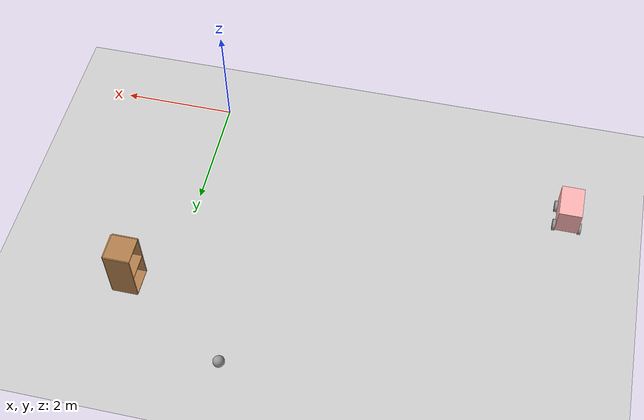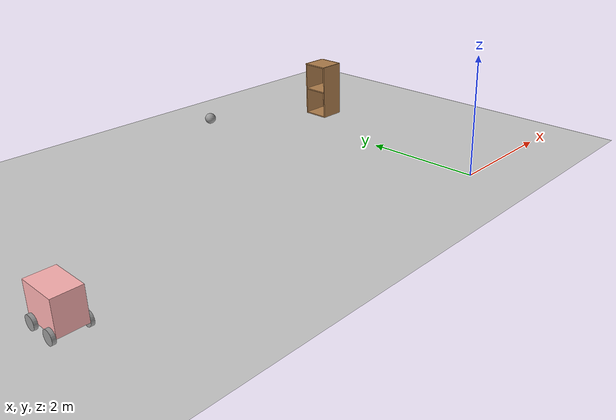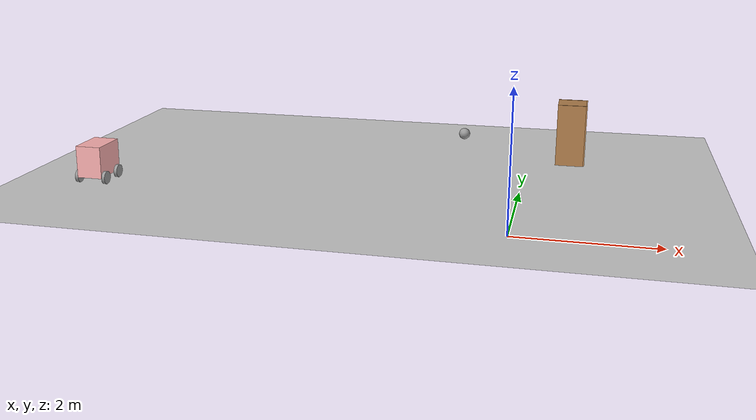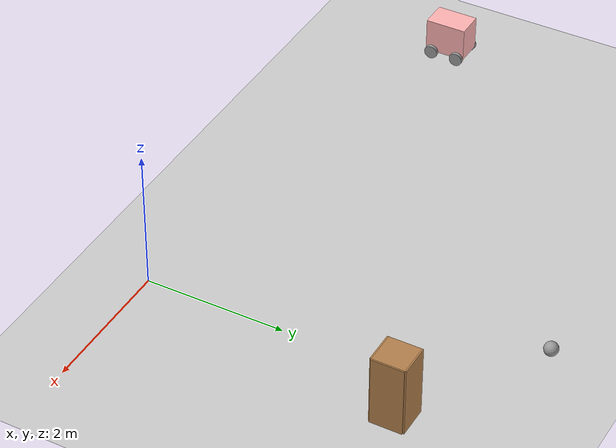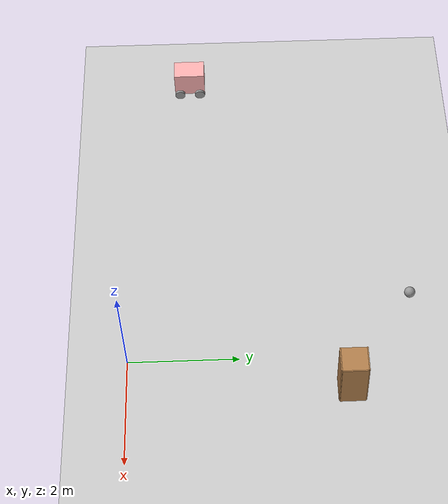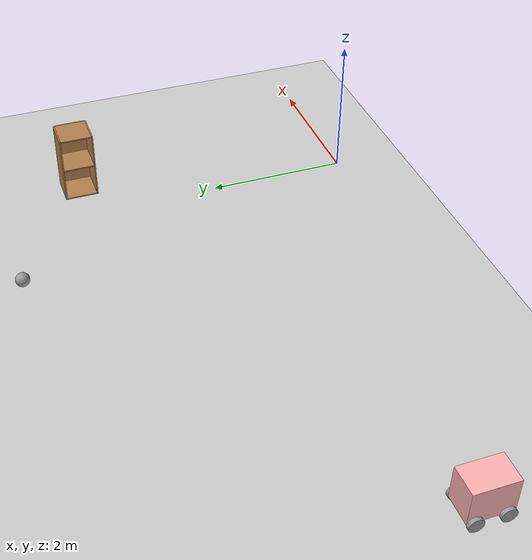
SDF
<sdf version="1.6">
 <world name="default">
  <model name="ground_plane">
   <static>1</static>
   <link name="link">
    <collision name="collision">
     <geometry><plane><normal>0 0 1</normal><size>100 100</size></plane></geometry>
     <surface>
      <contact><collide_bitmask>65535</collide_bitmask></contact>
      <friction><ode><mu>100</mu><mu2>50</mu2></ode></friction>
     </surface>
    </collision>
    <visual name="visual">
     <cast_shadows>0</cast_shadows>
     <geometry><plane><normal>0 0 1</normal><size>100 100</size></plane></geometry>
     <material>
      <script><uri>file://media/materials/scripts/gazebo.material</uri><name>Gazebo/Grey</name></script>
     </material>
    </visual>
   </link>
  </model>
  <model name="cabinet">
   <static>1</static>
   <link name="cabinet_bottom_plate">
    <inertial>
     <pose>0 0 -1 0 -0 0</pose>
     <inertia><ixx>2.05</ixx><ixy>0</ixy><ixz>0</ixz><iyy>2.05</iyy><iyz>0</iyz><izz>2.05</izz></inertia>
     <mass>25</mass>
    </inertial>
    <collision name="cabinet_bottom_plate_geom">
     <pose>0 0 0.01 0 -0 0</pose>
     <geometry><box><size>0.45 0.45 0.02</size></box></geometry>
    </collision>
    <visual name="cabinet_bottom_plate_geom_visual">
     <pose>0 0 0.01 0 -0 0</pose>
     <geometry><box><size>0.45 0.45 0.02</size></box></geometry>
     <material>
      <script><uri>file://media/materials/scripts/gazebo.material</uri><name>Gazebo/Wood</name></script>
     </material>
    </visual>
    <collision name="cabinet_bottom_plate_geom_cabinet_back_plate">
     <pose>0.235 0 0.51 0 -0 0</pose>
     <geometry><box><size>0.02 0.45 1.02</size></box></geometry>
    </collision>
    <visual name="cabinet_bottom_plate_geom_cabinet_back_plate_visual">
     <pose>0.235 0 0.51 0 -0 0</pose>
     <geometry><box><size>0.02 0.45 1.02</size></box></geometry>
     <material>
      <script><uri>file://media/materials/scripts/gazebo.material</uri><name>Gazebo/Wood</name></script>
     </material>
    </visual>
    <collision name="cabinet_bottom_plate_geom_cabinet_left_plate">
     <pose>0 0.235 0.51 0 -0 0</pose>
     <geometry><box><size>0.45 0.02 1.02</size></box></geometry>
    </collision>
    <visual name="cabinet_bottom_plate_geom_cabinet_left_plate_visual">
     <pose>0 0.235 0.51 0 -0 0</pose>
     <geometry><box><size>0.45 0.02 1.02</size></box></geometry>
     <material>
      <script><uri>file://media/materials/scripts/gazebo.material</uri><name>Gazebo/Wood</name></script>
     </material>
    </visual>
    <collision name="cabinet_bottom_plate_geom_cabinet_middle_plate">
     <pose>0 0 0.51 0 -0 0</pose>
     <geometry><box><size>0.45 0.45 0.02</size></box></geometry>
    </collision>
    <visual name="cabinet_bottom_plate_geom_cabinet_middle_plate_visual">
     <pose>0 0 0.51 0 -0 0</pose>
     <geometry><box><size>0.45 0.45 0.02</size></box></geometry>
     <material>
      <script><uri>file://media/materials/scripts/gazebo.material</uri><name>Gazebo/Wood</name></script>
     </material>
    </visual>
    <collision name="cabinet_bottom_plate_geom_cabinet_right_plate">
     <pose>0 -0.235 0.51 0 -0 0</pose>
     <geometry><box><size>0.45 0.02 1.02</size></box></geometry>
    </collision>
    <visual name="cabinet_bottom_plate_geom_cabinet_right_plate_visual">
     <pose>0 -0.235 0.51 0 -0 0</pose>
     <geometry><box><size>0.45 0.02 1.02</size></box></geometry>
     <material>
      <script><uri>file://media/materials/scripts/gazebo.material</uri><name>Gazebo/Wood</name></script>
     </material>
    </visual>
    <collision name="cabinet_bottom_plate_geom_cabinet_top_plate">
     <pose>0 0 1.01 0 -0 0</pose>
     <geometry><box><size>0.45 0.45 0.02</size></box></geometry>
    </collision>
    <visual name="cabinet_bottom_plate_geom_cabinet_top_plate_visual">
     <pose>0 0 1.01 0 -0 0</pose>
     <geometry><box><size>0.45 0.45 0.02</size></box></geometry>
     <material>
      <script><uri>file://media/materials/scripts/gazebo.material</uri><name>Gazebo/Wood</name></script>
     </material>
    </visual>
   </link>
   <pose>0.678768 3.94836 0 0 -0 0</pose>
  </model>
  <model name="my_ball">
   <link name="link_0">
    <inertial>
     <mass>1</mass>
     <inertia><ixx>0.1</ixx><ixy>0</ixy><ixz>0</ixz><iyy>0.1</iyy><iyz>0</iyz><izz>0.1</izz></inertia>
    </inertial>
    <visual name="visual">
     <geometry><sphere><radius>0.1</radius></sphere></geometry>
     <material>
      <lighting>1</lighting>
      <script><uri>file://media/materials/scripts/gazebo.material</uri><name>Gazebo/Grey</name></script>
      <shader type="vertex"><normal_map>__default__</normal_map></shader>
      <ambient>1 1 1 1</ambient>
      <diffuse>1 1 1 1</diffuse>
      <specular>1 1 1 1</specular>
      <emissive>1 1 1 1</emissive>
     </material>
    </visual>
    <collision name="collision">
     <geometry><sphere><radius>0.1</radius></sphere></geometry>
     <surface>
      <friction>
       <ode><mu>1</mu><mu2>1</mu2><fdir1>0 0 0</fdir1><slip1>0</slip1><slip2>0</slip2></ode>
       <torsional>
        <coefficient>1</coefficient>
        <patch_radius>0</patch_radius>
        <surface_radius>0</surface_radius>
        <use_patch_radius>1</use_patch_radius>
        <ode><slip>0</slip></ode>
       </torsional>
      </friction>
      <bounce><restitution_coefficient>0</restitution_coefficient><threshold>1e+06</threshold></bounce>
      <contact>
       <collide_without_contact>0</collide_without_contact>
       <collide_without_contact_bitmask>1</collide_without_contact_bitmask>
       <collide_bitmask>1</collide_bitmask>
       <ode>
        <soft_cfm>0</soft_cfm>
        <soft_erp>0.2</soft_erp>
        <kp>1e+13</kp>
        <kd>1</kd>
        <max_vel>0.01</max_vel>
        <min_depth>0</min_depth>
       </ode>
       <bullet>
        <split_impulse>1</split_impulse>
        <split_impulse_penetration_threshold>-0.01</split_impulse_penetration_threshold>
        <soft_cfm>0</soft_cfm>
        <soft_erp>0.2</soft_erp>
        <kp>1e+13</kp>
        <kd>1</kd>
       </bullet>
      </contact>
     </surface>
    </collision>
   </link>
   <static>0</static>
   <pose>-1.24508 5.14624 0.1 0 -0 0</pose>
  </model>
  <model name="Robot_1">
   <link name="link_0">
    <inertial>
     <mass>1</mass>
     <inertia>
      <ixx>0.166667</ixx>
      <ixy>0</ixy>
      <ixz>0</ixz>
      <iyy>0.166667</iyy>
      <iyz>0</iyz>
      <izz>0.166667</izz>
     </inertia>
    </inertial>
    <visual name="visual">
     <pose>0 0 0.25 0 -0 0</pose>
     <geometry><box><size>0.4 0.6 0.5</size></box></geometry>
     <material>
      <lighting>1</lighting>
      <script><uri>file://media/materials/scripts/gazebo.material</uri><name>Gazebo/Grey</name></script>
      <shader type="vertex"><normal_map>__default__</normal_map></shader>
      <ambient>1 0.3 0.3 1</ambient>
      <diffuse>1 0.7 0.7 1</diffuse>
      <specular>1 0.01 0.01 1</specular>
      <emissive>0 0 0 1</emissive>
     </material>
    </visual>
    <collision name="collision">
     <pose>0 0 0.25 0 -0 0</pose>
     <geometry><box><size>0.4 0.6 0.5</size></box></geometry>
     <surface>
      <friction>
       <ode><mu>1</mu><mu2>1</mu2><fdir1>0 0 0</fdir1><slip1>0</slip1><slip2>0</slip2></ode>
       <torsional>
        <coefficient>1</coefficient>
        <patch_radius>0</patch_radius>
        <surface_radius>0</surface_radius>
        <use_patch_radius>1</use_patch_radius>
        <ode><slip>0</slip></ode>
       </torsional>
      </friction>
      <bounce><restitution_coefficient>0</restitution_coefficient><threshold>1e+06</threshold></bounce>
      <contact>
       <collide_without_contact>0</collide_without_contact>
       <collide_without_contact_bitmask>1</collide_without_contact_bitmask>
       <collide_bitmask>1</collide_bitmask>
       <ode>
        <soft_cfm>0</soft_cfm>
        <soft_erp>0.2</soft_erp>
        <kp>1e+13</kp>
        <kd>1</kd>
        <max_vel>0.01</max_vel>
        <min_depth>0</min_depth>
       </ode>
       <bullet>
        <split_impulse>1</split_impulse>
        <split_impulse_penetration_threshold>-0.01</split_impulse_penetration_threshold>
        <soft_cfm>0</soft_cfm>
        <soft_erp>0.2</soft_erp>
        <kp>1e+13</kp>
        <kd>1</kd>
       </bullet>
      </contact>
     </surface>
    </collision>
   </link>
   <link name="link_1_clone">
    <inertial>
     <mass>1</mass>
     <inertia><ixx>0.145833</ixx><ixy>0</ixy><ixz>0</ixz><iyy>0.145833</iyy><iyz>0</iyz><izz>0.125</izz></inertia>
    </inertial>
    <pose>-0.225001 0.2 0 1.5708 -0 1.5708</pose>
    <visual name="visual">
     <geometry><cylinder><radius>0.1</radius><length>0.05</length></cylinder></geometry>
     <material>
      <lighting>1</lighting>
      <script><uri>file://media/materials/scripts/gazebo.material</uri><name>Gazebo/Grey</name></script>
      <shader type="vertex"><normal_map>__default__</normal_map></shader>
      <ambient>0.3 0.3 0.3 1</ambient>
      <diffuse>0.7 0.7 0.7 1</diffuse>
      <specular>0.01 0.01 0.01 1</specular>
      <emissive>0 0 0 1</emissive>
     </material>
    </visual>
    <collision name="collision">
     <geometry><cylinder><radius>0.1</radius><length>0.05</length></cylinder></geometry>
     <surface>
      <friction>
       <ode><mu>1</mu><mu2>1</mu2><fdir1>0 0 0</fdir1><slip1>0</slip1><slip2>0</slip2></ode>
       <torsional>
        <coefficient>1</coefficient>
        <patch_radius>0</patch_radius>
        <surface_radius>0</surface_radius>
        <use_patch_radius>1</use_patch_radius>
        <ode><slip>0</slip></ode>
       </torsional>
      </friction>
      <bounce><restitution_coefficient>0</restitution_coefficient><threshold>1e+06</threshold></bounce>
      <contact>
       <collide_without_contact>0</collide_without_contact>
       <collide_without_contact_bitmask>1</collide_without_contact_bitmask>
       <collide_bitmask>1</collide_bitmask>
       <ode>
        <soft_cfm>0</soft_cfm>
        <soft_erp>0.2</soft_erp>
        <kp>1e+13</kp>
        <kd>1</kd>
        <max_vel>0.01</max_vel>
        <min_depth>0</min_depth>
       </ode>
       <bullet>
        <split_impulse>1</split_impulse>
        <split_impulse_penetration_threshold>-0.01</split_impulse_penetration_threshold>
        <soft_cfm>0</soft_cfm>
        <soft_erp>0.2</soft_erp>
        <kp>1e+13</kp>
        <kd>1</kd>
       </bullet>
      </contact>
     </surface>
    </collision>
   </link>
   <link name="link_1_clone_0">
    <inertial>
     <mass>1</mass>
     <inertia><ixx>0.145833</ixx><ixy>0</ixy><ixz>0</ixz><iyy>0.145833</iyy><iyz>0</iyz><izz>0.125</izz></inertia>
    </inertial>
    <pose>0.225001 0.2 -0 1.5708 -0 1.5708</pose>
    <visual name="visual">
     <geometry><cylinder><radius>0.1</radius><length>0.05</length></cylinder></geometry>
     <material>
      <lighting>1</lighting>
      <script><uri>file://media/materials/scripts/gazebo.material</uri><name>Gazebo/Grey</name></script>
      <shader type="vertex"><normal_map>__default__</normal_map></shader>
      <ambient>0.3 0.3 0.3 1</ambient>
      <diffuse>0.7 0.7 0.7 1</diffuse>
      <specular>0.01 0.01 0.01 1</specular>
      <emissive>0 0 0 1</emissive>
     </material>
    </visual>
    <collision name="collision">
     <geometry><cylinder><radius>0.1</radius><length>0.05</length></cylinder></geometry>
     <surface>
      <friction>
       <ode><mu>1</mu><mu2>1</mu2><fdir1>0 0 0</fdir1><slip1>0</slip1><slip2>0</slip2></ode>
       <torsional>
        <coefficient>1</coefficient>
        <patch_radius>0</patch_radius>
        <surface_radius>0</surface_radius>
        <use_patch_radius>1</use_patch_radius>
        <ode><slip>0</slip></ode>
       </torsional>
      </friction>
      <bounce><restitution_coefficient>0</restitution_coefficient><threshold>1e+06</threshold></bounce>
      <contact>
       <collide_without_contact>0</collide_without_contact>
       <collide_without_contact_bitmask>1</collide_without_contact_bitmask>
       <collide_bitmask>1</collide_bitmask>
       <ode>
        <soft_cfm>0</soft_cfm>
        <soft_erp>0.2</soft_erp>
        <kp>1e+13</kp>
        <kd>1</kd>
        <max_vel>0.01</max_vel>
        <min_depth>0</min_depth>
       </ode>
       <bullet>
        <split_impulse>1</split_impulse>
        <split_impulse_penetration_threshold>-0.01</split_impulse_penetration_threshold>
        <soft_cfm>0</soft_cfm>
        <soft_erp>0.2</soft_erp>
        <kp>1e+13</kp>
        <kd>1</kd>
       </bullet>
      </contact>
     </surface>
    </collision>
   </link>
   <link name="link_1_clone_1">
    <inertial>
     <mass>1</mass>
     <inertia><ixx>0.145833</ixx><ixy>0</ixy><ixz>0</ixz><iyy>0.145833</iyy><iyz>0</iyz><izz>0.125</izz></inertia>
    </inertial>
    <pose>0.225001 -0.2 -0 1.5708 -0 1.5708</pose>
    <visual name="visual">
     <geometry><cylinder><radius>0.1</radius><length>0.05</length></cylinder></geometry>
     <material>
      <lighting>1</lighting>
      <script><uri>file://media/materials/scripts/gazebo.material</uri><name>Gazebo/Grey</name></script>
      <shader type="vertex"><normal_map>__default__</normal_map></shader>
      <ambient>0.3 0.3 0.3 1</ambient>
      <diffuse>0.7 0.7 0.7 1</diffuse>
      <specular>0.01 0.01 0.01 1</specular>
      <emissive>0 0 0 1</emissive>
     </material>
    </visual>
    <collision name="collision">
     <geometry><cylinder><radius>0.1</radius><length>0.05</length></cylinder></geometry>
     <surface>
      <friction>
       <ode><mu>1</mu><mu2>1</mu2><fdir1>0 0 0</fdir1><slip1>0</slip1><slip2>0</slip2></ode>
       <torsional>
        <coefficient>1</coefficient>
        <patch_radius>0</patch_radius>
        <surface_radius>0</surface_radius>
        <use_patch_radius>1</use_patch_radius>
        <ode><slip>0</slip></ode>
       </torsional>
      </friction>
      <bounce><restitution_coefficient>0</restitution_coefficient><threshold>1e+06</threshold></bounce>
      <contact>
       <collide_without_contact>0</collide_without_contact>
       <collide_without_contact_bitmask>1</collide_without_contact_bitmask>
       <collide_bitmask>1</collide_bitmask>
       <ode>
        <soft_cfm>0</soft_cfm>
        <soft_erp>0.2</soft_erp>
        <kp>1e+13</kp>
        <kd>1</kd>
        <max_vel>0.01</max_vel>
        <min_depth>0</min_depth>
       </ode>
       <bullet>
        <split_impulse>1</split_impulse>
        <split_impulse_penetration_threshold>-0.01</split_impulse_penetration_threshold>
        <soft_cfm>0</soft_cfm>
        <soft_erp>0.2</soft_erp>
        <kp>1e+13</kp>
        <kd>1</kd>
       </bullet>
      </contact>
     </surface>
    </collision>
   </link>
   <link name="link_1_clone_clone">
    <inertial>
     <mass>1</mass>
     <inertia><ixx>0.145833</ixx><ixy>0</ixy><ixz>0</ixz><iyy>0.145833</iyy><iyz>0</iyz><izz>0.125</izz></inertia>
    </inertial>
    <pose>-0.225001 -0.2 0 1.5708 -0 1.5708</pose>
    <visual name="visual">
     <geometry><cylinder><radius>0.1</radius><length>0.05</length></cylinder></geometry>
     <material>
      <lighting>1</lighting>
      <script><uri>file://media/materials/scripts/gazebo.material</uri><name>Gazebo/Grey</name></script>
      <shader type="vertex"><normal_map>__default__</normal_map></shader>
      <ambient>0.3 0.3 0.3 1</ambient>
      <diffuse>0.7 0.7 0.7 1</diffuse>
      <specular>0.01 0.01 0.01 1</specular>
      <emissive>0 0 0 1</emissive>
     </material>
    </visual>
    <collision name="collision">
     <geometry><cylinder><radius>0.1</radius><length>0.05</length></cylinder></geometry>
     <surface>
      <friction>
       <ode><mu>1</mu><mu2>1</mu2><fdir1>0 0 0</fdir1><slip1>0</slip1><slip2>0</slip2></ode>
       <torsional>
        <coefficient>1</coefficient>
        <patch_radius>0</patch_radius>
        <surface_radius>0</surface_radius>
        <use_patch_radius>1</use_patch_radius>
        <ode><slip>0</slip></ode>
       </torsional>
      </friction>
      <bounce><restitution_coefficient>0</restitution_coefficient><threshold>1e+06</threshold></bounce>
      <contact>
       <collide_without_contact>0</collide_without_contact>
       <collide_without_contact_bitmask>1</collide_without_contact_bitmask>
       <collide_bitmask>1</collide_bitmask>
       <ode>
        <soft_cfm>0</soft_cfm>
        <soft_erp>0.2</soft_erp>
        <kp>1e+13</kp>
        <kd>1</kd>
        <max_vel>0.01</max_vel>
        <min_depth>0</min_depth>
       </ode>
       <bullet>
        <split_impulse>1</split_impulse>
        <split_impulse_penetration_threshold>-0.01</split_impulse_penetration_threshold>
        <soft_cfm>0</soft_cfm>
        <soft_erp>0.2</soft_erp>
        <kp>1e+13</kp>
        <kd>1</kd>
       </bullet>
      </contact>
     </surface>
    </collision>
   </link>
   <joint name="link_0_JOINT_0" type="revolute">
    <parent>link_0</parent>
    <child>link_1_clone</child>
    <axis>
     <xyz>0 0 1</xyz>
     <use_parent_model_frame>0</use_parent_model_frame>
     <limit>
      <lower>-1.79769e+308</lower>
      <upper>1.79769e+308</upper>
      <effort>-1</effort>
      <velocity>-1</velocity>
     </limit>
     <dynamics>
      <spring_reference>0</spring_reference>
      <spring_stiffness>0</spring_stiffness>
      <damping>0</damping>
      <friction>0</friction>
     </dynamics>
    </axis>
    <physics>
     <ode><limit><cfm>0</cfm><erp>0.2</erp></limit><suspension><cfm>0</cfm><erp>0.2</erp></suspension></ode>
    </physics>
   </joint>
   <joint name="link_0_JOINT_1" type="revolute">
    <parent>link_0</parent>
    <child>link_1_clone_0</child>
    <axis>
     <xyz>0 0 1</xyz>
     <use_parent_model_frame>0</use_parent_model_frame>
     <limit>
      <lower>-1.79769e+308</lower>
      <upper>1.79769e+308</upper>
      <effort>-1</effort>
      <velocity>-1</velocity>
     </limit>
     <dynamics>
      <spring_reference>0</spring_reference>
      <spring_stiffness>0</spring_stiffness>
      <damping>0</damping>
      <friction>0</friction>
     </dynamics>
    </axis>
    <physics>
     <ode><limit><cfm>0</cfm><erp>0.2</erp></limit><suspension><cfm>0</cfm><erp>0.2</erp></suspension></ode>
    </physics>
   </joint>
   <joint name="link_0_JOINT_2" type="revolute">
    <parent>link_0</parent>
    <child>link_1_clone_1</child>
    <axis>
     <xyz>0 0 1</xyz>
     <use_parent_model_frame>0</use_parent_model_frame>
     <limit>
      <lower>-1.79769e+308</lower>
      <upper>1.79769e+308</upper>
      <effort>-1</effort>
      <velocity>-1</velocity>
     </limit>
     <dynamics>
      <spring_reference>0</spring_reference>
      <spring_stiffness>0</spring_stiffness>
      <damping>0</damping>
      <friction>0</friction>
     </dynamics>
    </axis>
    <physics>
     <ode><limit><cfm>0</cfm><erp>0.2</erp></limit><suspension><cfm>0</cfm><erp>0.2</erp></suspension></ode>
    </physics>
   </joint>
   <joint name="link_0_JOINT_4" type="revolute">
    <parent>link_0</parent>
    <child>link_1_clone_clone</child>
    <axis>
     <xyz>0 0 1</xyz>
     <use_parent_model_frame>0</use_parent_model_frame>
     <limit>
      <lower>-1.79769e+308</lower>
      <upper>1.79769e+308</upper>
      <effort>-1</effort>
      <velocity>-1</velocity>
     </limit>
     <dynamics>
      <spring_reference>0</spring_reference>
      <spring_stiffness>0</spring_stiffness>
      <damping>0</damping>
      <friction>0</friction>
     </dynamics>
    </axis>
    <physics>
     <ode><limit><cfm>0</cfm><erp>0.2</erp></limit><suspension><cfm>0</cfm><erp>0.2</erp></suspension></ode>
    </physics>
   </joint>
   <static>0</static>
   <pose>-6.50614 1.13963 0.100004 -8e-06 -2e-06 -0.000195</pose>
  </model>
 </world>
</sdf>
